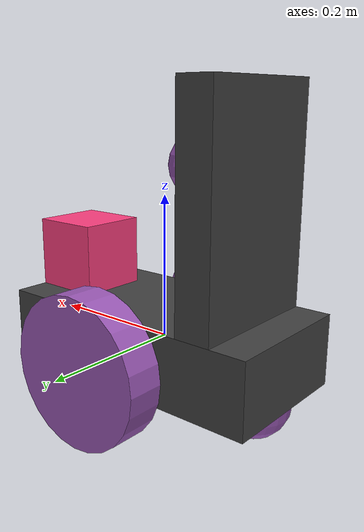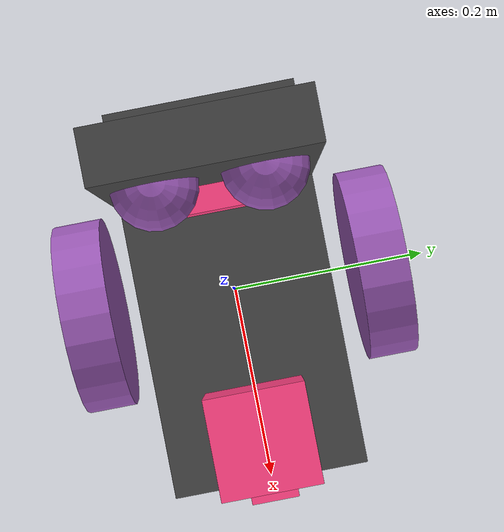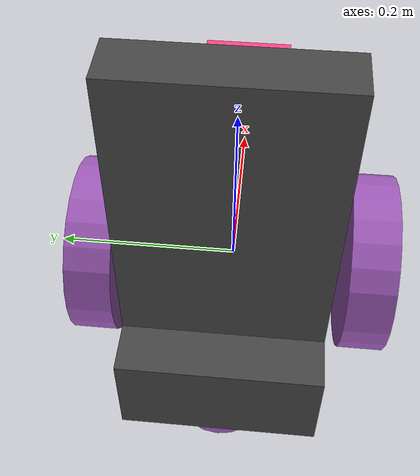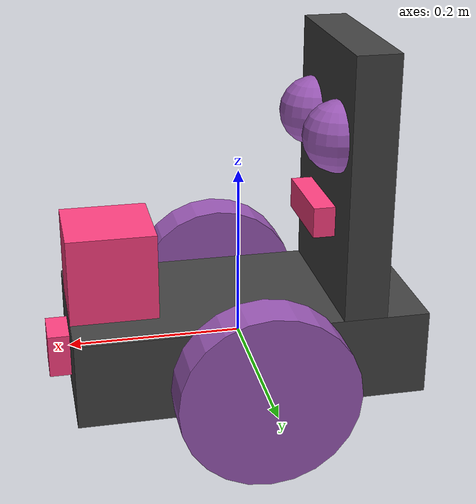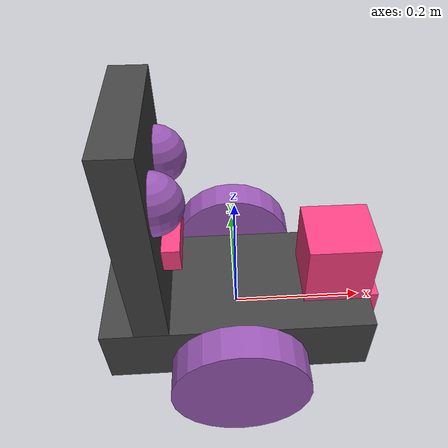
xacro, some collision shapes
<?xml version='1.0'?>

<robot name="udacity_bot" xmlns:xacro="http://www.ros.org/wiki/xacro">

  <xacro:include filename="$(find udacity_bot)/urdf/udacity_bot.gazebo" />

  <link name="robot_footprint"></link>

  <joint name="robot_footprint_joint" type="fixed">
    <origin xyz="0 0 0" rpy="0 0 0" />
    <parent link="robot_footprint"/>
    <child link="chassis" />
  </joint>

  <link name='chassis'>
    <pose>0 0 0.1 0 0 0</pose>

    <visual name='face'>
      <origin xyz="-0.125 0 0.2" rpy=" 0 0 0"/>
      <geometry>
        <box size=".05 .2 .3"/>
      </geometry>
      <material name="darkgrey">
        <color rgba="${66/255} ${66/255} ${66/255} 1.0"/>
      </material>
    </visual>

    <visual name='mouth'>
      <origin xyz="-0.1 0 0.15" rpy=" 0 0 0"/>
      <geometry>
        <box size="0.05 .1 .035"/>
      </geometry>
      <material name="pink">
        <color rgba="${255/255} ${64/255} ${129/255} 1.0"/>
      </material>
    </visual>

    <visual name='left_eye'>
      <origin xyz="-0.1 -0.05 0.25" rpy=" 0 0 0"/>
      <geometry>
        <sphere radius="0.04"/>
      </geometry>
      <material name="violet">
        <color rgba="${155/255} ${89/255} ${182/255} 1.0"/>
      </material>
    </visual>

    <visual name='right_eye'>
      <origin xyz="-0.1 0.05 0.25" rpy=" 0 0 0"/>
      <geometry>
        <sphere radius="0.04"/>
      </geometry>
      <material name="violet">
        <color rgba="${155/255} ${89/255} ${182/255} 1.0"/>
      </material>
    </visual>

    <inertial>
      <mass value="15.0"/>
      <origin xyz="0.0 0 0" rpy=" 0 0 0"/>
      <inertia
          ixx="0.1" ixy="0" ixz="0"
          iyy="0.1" iyz="0"
          izz="0.1"
      />
    </inertial>

    <collision name='collision'>
      <origin xyz="0 0 0" rpy=" 0 0 0"/>
      <geometry>
        <box size=".4 .2 .1"/>
      </geometry>
    </collision>

    <visual name='chassis_visual'>
      <origin xyz="0 0 0" rpy=" 0 0 0"/>
      <geometry>
        <box size=".4 .2 .1"/>
      </geometry>
      <material name="darkgrey">
        <color rgba="${66/255} ${66/255} ${66/255} 1.0"/>
      </material>
    </visual>

    <collision name='back_caster_collision'>
      <origin xyz="-0.15 0 -0.05" rpy=" 0 0 0"/>
      <geometry>
        <sphere radius="0.05"/>
      </geometry>
      <surface>
        <friction>
          <ode>
            <mu>0</mu>
            <mu2>0</mu2>
            <slip1>1.0</slip1>
            <slip2>1.0</slip2>
          </ode>
        </friction>
      </surface>
    </collision>

    <visual name='back_caster_visual'>
      <origin xyz="-0.15 0 -0.05" rpy=" 0 0 0"/>
      <geometry>
        <sphere radius="0.05"/>
      </geometry>
      <material name="violet">
        <color rgba="${155/255} ${89/255} ${182/255} 1.0"/>
      </material>
    </visual>

    <collision name='front_caster_collision'>
      <origin xyz="0.15 0 -0.05" rpy=" 0 0 0"/>
      <geometry>
        <sphere radius="0.05"/>
      </geometry>
      <surface>
        <friction>
          <ode>
            <mu>0</mu>
            <mu2>0</mu2>
            <slip1>1.0</slip1>
            <slip2>1.0</slip2>
          </ode>
        </friction>
      </surface>
    </collision>

    <visual name='front_caster_visual'>
      <origin xyz="0.15 0 -0.05" rpy=" 0 0 0"/>
      <geometry>
        <sphere radius="0.05"/>
      </geometry>
      <material name="violet">
        <color rgba="${155/255} ${89/255} ${182/255} 1.0"/>
      </material>
    </visual>

  </link>

  <link name="left_wheel">
    <collision name="collision">
      <origin xyz="0 0 0" rpy="0 1.5707 1.5707"/>
      <geometry>
        <cylinder radius="0.1" length="0.05"/>
      </geometry>
    </collision>
    <visual name="left_wheel_visual">
      <origin xyz="0 0 0" rpy="0 1.5707 1.5707"/>
      <geometry>
        <cylinder radius="0.1" length="0.05"/>
      </geometry>
      <material name="violet">
        <color rgba="${155/255} ${89/255} ${182/255} 1.0"/>
      </material>
    </visual>
    <inertial>
      <origin xyz="0 0 0" rpy="0 1.5707 1.5707"/>
      <mass value="5"/>
      <inertia
        ixx=".1" ixy="0.0" ixz="0.0"
        iyy=".1" iyz="0.0"
        izz=".1"/>
    </inertial>
  </link>

  <joint type="continuous" name="left_wheel_hinge">
    <origin xyz="0 0.15 0" rpy="0 0 0"/>
    <child link="left_wheel"/>
    <parent link="chassis"/>
    <axis xyz="0 1 0" rpy="0 0 0"/>
    <limit effort="10000" velocity="1000"/>
    <joint_properties damping="1.0" friction="1.0"/>
  </joint>

  <link name="right_wheel">
    <collision name="collision">
      <origin xyz="0 0 0" rpy="0 1.5707 1.5707"/>
      <geometry>
        <cylinder radius="0.1" length="0.05"/>
      </geometry>
    </collision>
    <visual name="right_wheel_visual">
      <origin xyz="0 0 0" rpy="0 1.5707 1.5707"/>
      <geometry>
        <cylinder radius="0.1" length="0.05"/>
      </geometry>
      <material name="violet">
        <color rgba="${155/255} ${89/255} ${182/255} 1.0"/>
      </material>
    </visual>
    <inertial>
      <origin xyz="0 0 0" rpy="0 1.5707 1.5707"/>
      <mass value="5"/>
      <inertia
        ixx=".1" ixy="0.0" ixz="0.0"
        iyy=".1" iyz="0.0"
        izz=".1"/>
    </inertial>
  </link>

  <joint type="continuous" name="right_wheel_hinge">
    <origin xyz="0 -0.15 0" rpy="0 0 0"/>
    <child link="right_wheel"/>
    <parent link="chassis"/>
    <axis xyz="0 1 0" rpy="0 0 0"/>
    <limit effort="10000" velocity="1000"/>
    <joint_properties damping="1.0" friction="1.0"/>
  </joint>

<xacro:property name="cameraSize" value="0.05"/>
  <xacro:property name="cameraMass" value="0.1"/>

  <!-- Camera -->
  <link name="camera">
    <collision>
      <origin xyz="0 0 0" rpy="0 0 0"/>
      <geometry>
        <box size="${cameraSize} ${cameraSize} ${cameraSize}"/>
      </geometry>
    </collision>

    <visual>
      <origin xyz="0 0 0" rpy="0 0 0"/>
      <geometry>
        <box size="${cameraSize} ${cameraSize} ${cameraSize}"/>
      </geometry>
      <material name="pink">
        <color rgba="${255/255} ${64/255} ${129/255} 1.0"/>
      </material>
    </visual>

    <inertial>
      <mass value="${cameraMass}" />
      <origin xyz="0 0 0" rpy="0 0 0"/>
      <box_inertia m="${cameraMass}" x="${cameraSize}" y="${cameraSize}" z="${cameraSize}" />
      <inertia ixx="1e-6" ixy="0" ixz="0" iyy="1e-6" iyz="0" izz="1e-6" />
    </inertial>
  </link>

  <joint name="camera_joint" type="fixed">
    <axis xyz="0 1 0" />
    <origin xyz=".2 0 0" rpy="0 0 0"/>
    <parent link="chassis"/>
    <child link="camera"/>
  </joint>

  <joint name="hokuyo_joint" type="fixed">
    <axis xyz="0 1 0" />
    <origin xyz=".15 0 .1" rpy="0 0 0"/>
    <parent link="chassis"/>
    <child link="hokuyo"/>
  </joint>
  <!-- Hokuyo Laser -->
  <link name="hokuyo">
    <collision>
      <origin xyz="0 0 0" rpy="0 0 0"/>
      <geometry>
          <box size="0.1 0.1 0.1"/>
      </geometry>
    </collision>

    <visual>
      <material name="pink">
        <color rgba="${255/255} ${64/255} ${129/255} 1.0"/>
      </material>
      <origin xyz="0 0 0" rpy="0 0 0"/>
      <geometry>
          <mesh filename="package://udacity_bot/meshes/hokuyo.dae"/>
      </geometry>
    </visual>

    <inertial>
      <mass value="1e-5" />
      <origin xyz="0 0 0" rpy="0 0 0"/>
      <inertia ixx="1e-6" ixy="0" ixz="0" iyy="1e-6" iyz="0" izz="1e-6" />
    </inertial>
  </link>

</robot>
